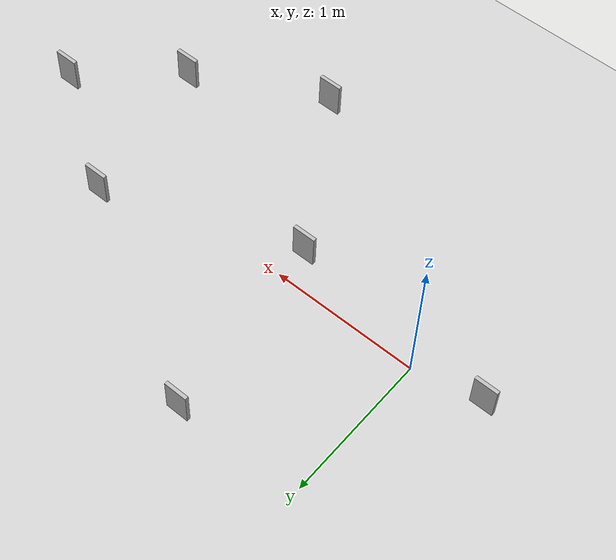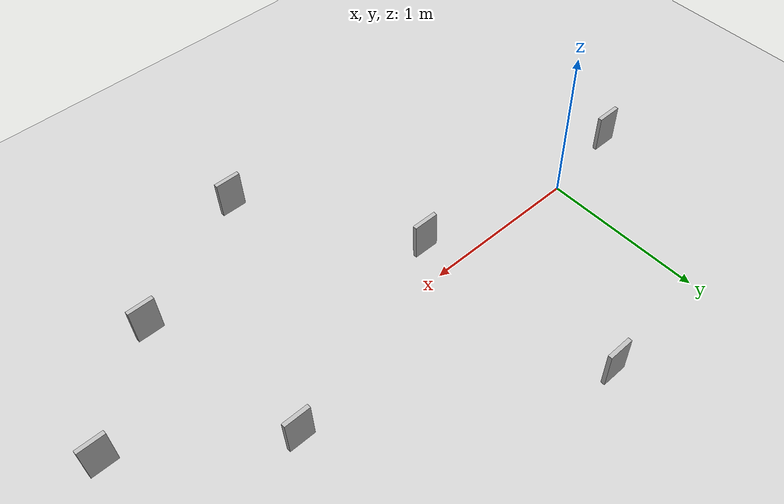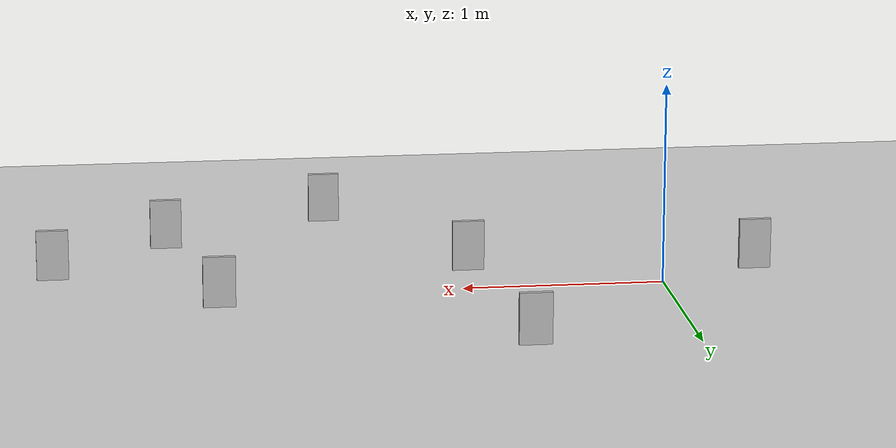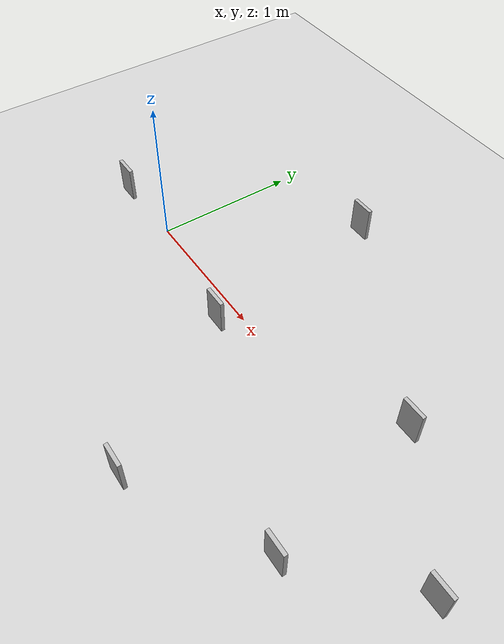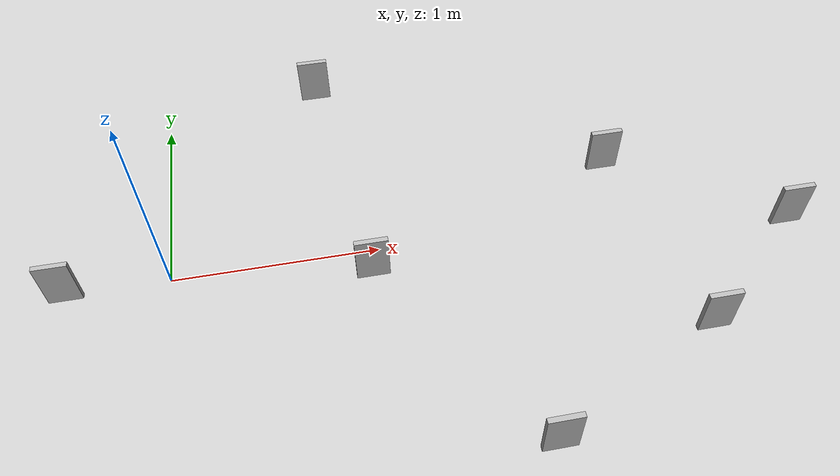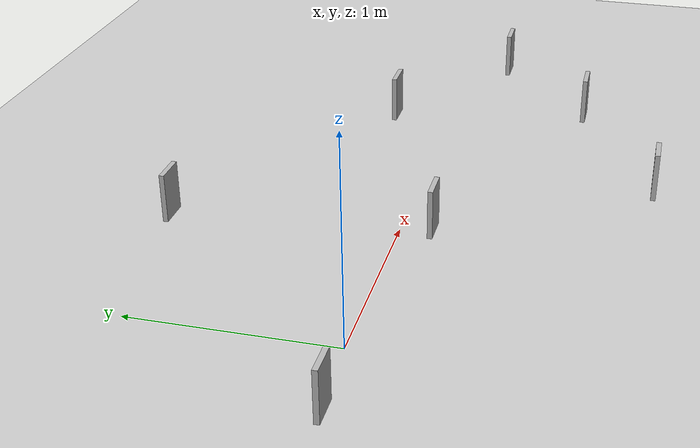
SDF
<sdf version="1.6">
 <world name="default">
  <light name="sun" type="directional">
   <pose>0 0 10 0 -0 0</pose>
   <diffuse>0.8 0.8 0.8 1</diffuse>
   <specular>0.2 0.2 0.2 1</specular>
   <attenuation>
    <range>1000</range>
    <constant>0.9</constant>
    <linear>0.01</linear>
    <quadratic>0.001</quadratic>
   </attenuation>
   <direction>-0.5 0.1 -0.9</direction>
  </light>
  <model name="ground_plane">
   <static>1</static>
   <link name="link">
    <collision name="collision">
     <geometry><plane><normal>0 0 1</normal><size>100 100</size></plane></geometry>
     <surface>
      <contact><collide_bitmask>65535</collide_bitmask></contact>
      <friction><ode><mu>100</mu><mu2>50</mu2></ode></friction>
     </surface>
    </collision>
    <visual name="visual">
     <cast_shadows>0</cast_shadows>
     <geometry><plane><normal>0 0 1</normal><size>100 100</size></plane></geometry>
     <material>
      <script><uri>file://media/materials/scripts/gazebo.material</uri><name>Gazebo/Grey</name></script>
     </material>
    </visual>
   </link>
  </model>
  <gravity>0 0 -9.8</gravity>
  <magnetic_field>6e-06 2.3e-05 -4.2e-05</magnetic_field>
  <atmosphere type="adiabatic"/>
  <physics name="default_physics" default="0" type="ode">
   <max_step_size>0.001</max_step_size>
   <real_time_factor>1</real_time_factor>
   <real_time_update_rate>1000</real_time_update_rate>
  </physics>
  <scene><ambient>0.4 0.4 0.4 1</ambient><background>0.7 0.7 0.7 1</background><shadows>1</shadows></scene>
  <audio><device>default</device></audio>
  <spherical_coordinates>
   <surface_model>EARTH_WGS84</surface_model>
   <latitude_deg>0</latitude_deg>
   <longitude_deg>0</longitude_deg>
   <elevation>0</elevation>
   <heading_deg>0</heading_deg>
  </spherical_coordinates>
  <model name="dog_panel">
   <static>1</static>
   <link name="box">
    <collision name="collision"><geometry><box><size>0.157 0.025 0.25</size></box></geometry></collision>
    <visual name="visual">
     <geometry><box><size>0.157 0.025 0.25</size></box></geometry>
     <material>
      <script>
       <uri>model://dog_panel/materials/scripts</uri>
       <uri>model://dog_panel/materials/textures</uri>
       <name>dog_panel</name>
      </script>
     </material>
    </visual>
   </link>
   <pose>2.21861 0.299438 0.165065 0 -0 0</pose>
  </model>
  <model name="dog_panel_0">
   <static>1</static>
   <link name="box">
    <collision name="collision"><geometry><box><size>0.157 0.025 0.25</size></box></geometry></collision>
    <visual name="visual">
     <geometry><box><size>0.157 0.025 0.25</size></box></geometry>
     <material>
      <script>
       <uri>model://dog_panel/materials/scripts</uri>
       <uri>model://dog_panel/materials/textures</uri>
       <name>dog_panel</name>
      </script>
     </material>
    </visual>
   </link>
   <pose>0.951463 -0.173969 0.173471 0 -0 0</pose>
  </model>
  <model name="dog_panel_0_clone">
   <static>1</static>
   <link name="box">
    <collision name="collision"><geometry><box><size>0.157 0.025 0.25</size></box></geometry></collision>
    <visual name="visual">
     <geometry><box><size>0.157 0.025 0.25</size></box></geometry>
     <material>
      <script>
       <uri>model://dog_panel/materials/scripts</uri>
       <uri>model://dog_panel/materials/textures</uri>
       <name>dog_panel</name>
      </script>
     </material>
    </visual>
   </link>
   <pose>0.80948 1.10071 0.173471 0 -0 0</pose>
  </model>
  <model name="dog_panel_0_clone_0">
   <static>1</static>
   <link name="box">
    <collision name="collision"><geometry><box><size>0.157 0.025 0.25</size></box></geometry></collision>
    <visual name="visual">
     <geometry><box><size>0.157 0.025 0.25</size></box></geometry>
     <material>
      <script>
       <uri>model://dog_panel/materials/scripts</uri>
       <uri>model://dog_panel/materials/textures</uri>
       <name>dog_panel</name>
      </script>
     </material>
    </visual>
   </link>
   <pose>2.41993 -0.749736 0.173471 0 -0 0</pose>
  </model>
  <model name="dog_panel_0_clone_1">
   <static>1</static>
   <link name="box">
    <collision name="collision"><geometry><box><size>0.157 0.025 0.25</size></box></geometry></collision>
    <visual name="visual">
     <geometry><box><size>0.157 0.025 0.25</size></box></geometry>
     <material>
      <script>
       <uri>model://dog_panel/materials/scripts</uri>
       <uri>model://dog_panel/materials/textures</uri>
       <name>dog_panel</name>
      </script>
     </material>
    </visual>
   </link>
   <pose>-0.466858 -0.046155 0.173471 0 -0 0</pose>
  </model>
  <model name="dog_panel_0_clone_2">
   <static>1</static>
   <link name="box">
    <collision name="collision"><geometry><box><size>0.157 0.025 0.25</size></box></geometry></collision>
    <visual name="visual">
     <geometry><box><size>0.157 0.025 0.25</size></box></geometry>
     <material>
      <script>
       <uri>model://dog_panel/materials/scripts</uri>
       <uri>model://dog_panel/materials/textures</uri>
       <name>dog_panel</name>
      </script>
     </material>
    </visual>
   </link>
   <pose>3.00244 -0.233755 0.173471 0 -0 0</pose>
  </model>
  <model name="dog_panel_0_clone_3">
   <static>1</static>
   <link name="box">
    <collision name="collision"><geometry><box><size>0.157 0.025 0.25</size></box></geometry></collision>
    <visual name="visual">
     <geometry><box><size>0.157 0.025 0.25</size></box></geometry>
     <material>
      <script>
       <uri>model://dog_panel/materials/scripts</uri>
       <uri>model://dog_panel/materials/textures</uri>
       <name>dog_panel</name>
      </script>
     </material>
    </visual>
   </link>
   <pose>1.57668 -1.18178 0.173471 0 -0 0</pose>
  </model>
 </world>
</sdf>
